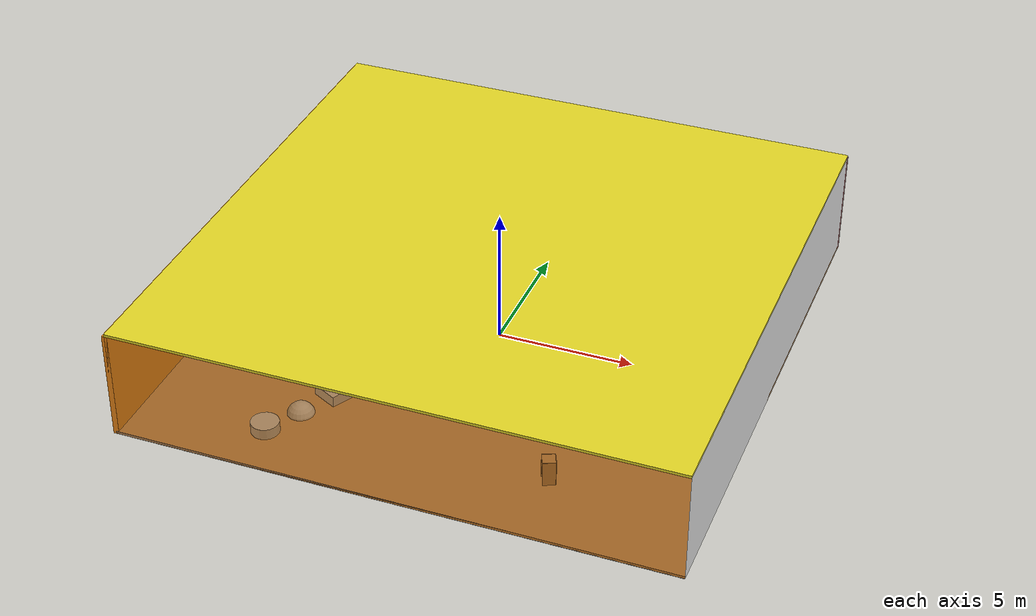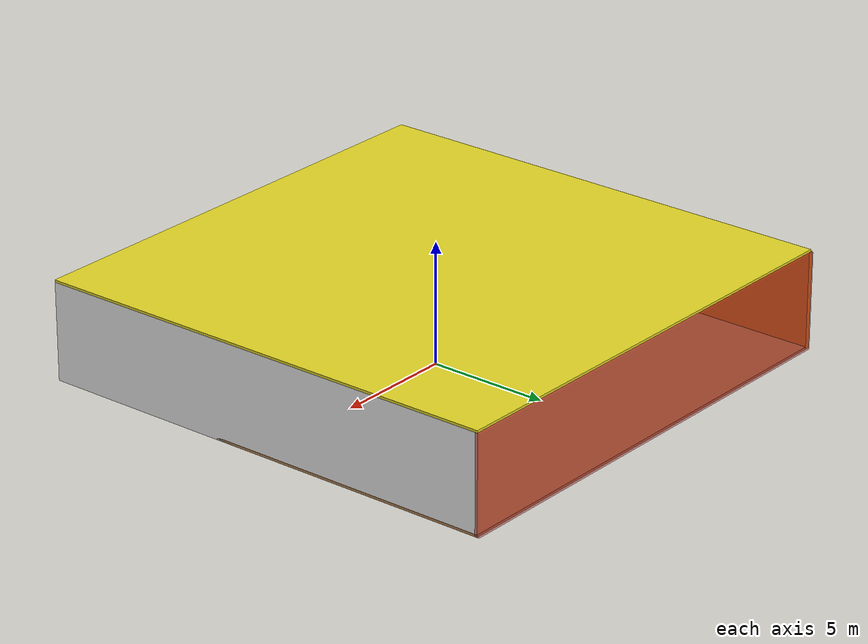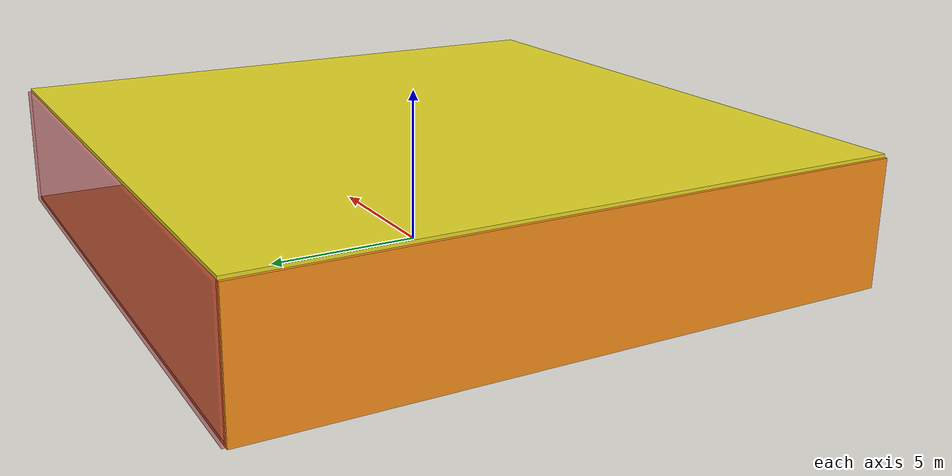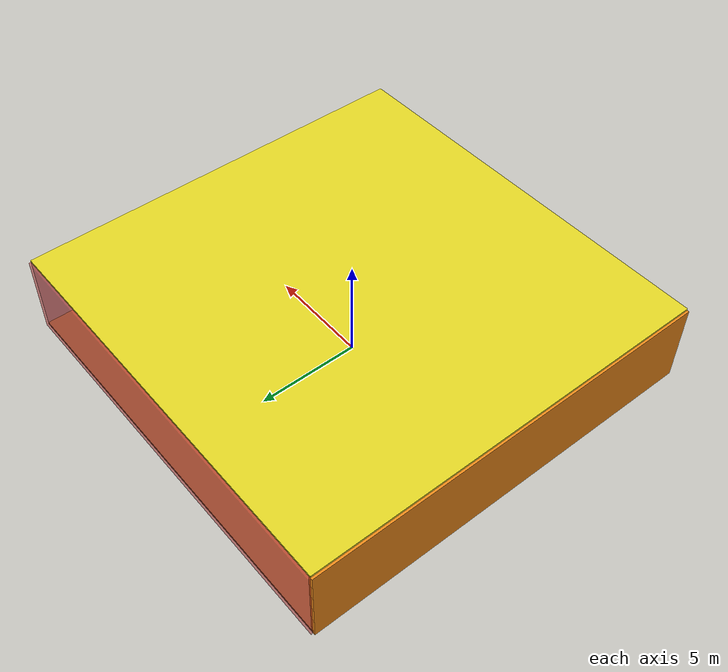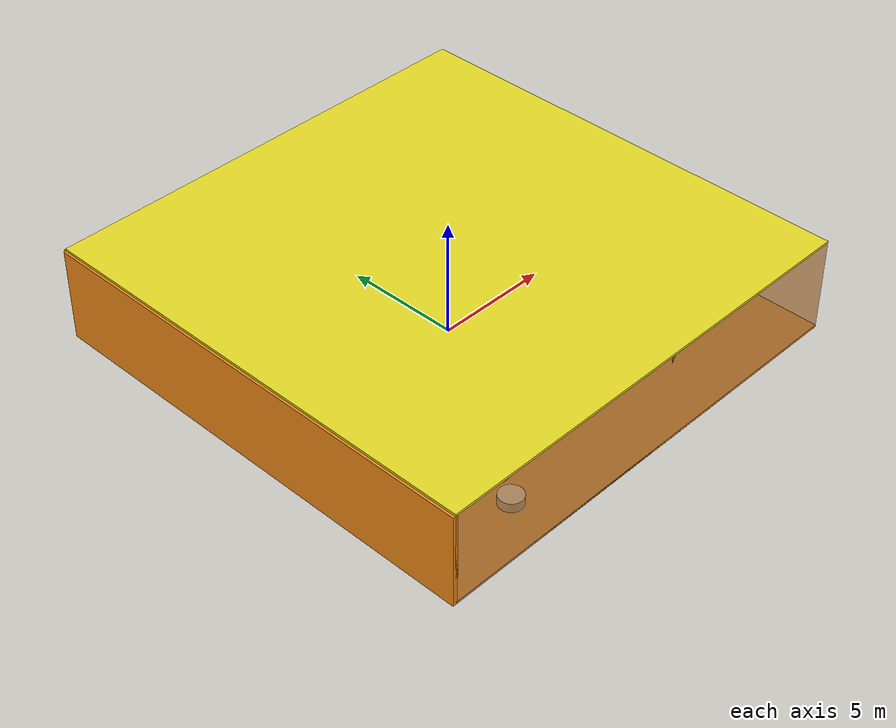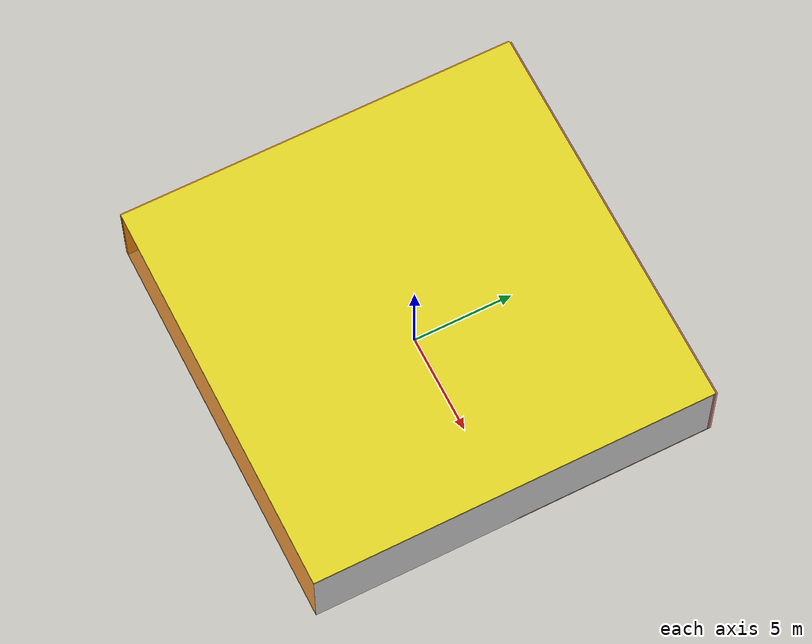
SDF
<sdf version="1.4">
 <world name="default">
  <physics type="ode">
   <max_step_size>0.001</max_step_size>
   <real_time_factor>1</real_time_factor>
   <real_time_update_rate>1000</real_time_update_rate>
   <gravity>0 0 -9.8</gravity>
  </physics>
  <scene><ambient>0.4 0.4 0.4 1</ambient><background>0.7 0.7 0.7 1</background><shadows>1</shadows></scene>
  <model name="Surrounding">
   <static>1</static>
   <link name="Ceiling">
    <collision name="Ceiling_Collision"><geometry><box><size>20 20 0.1</size></box></geometry></collision>
    <visual name="Ceiling_Visual">
     <geometry><box><size>20 20 0.1</size></box></geometry>
     <material>
      <script><uri>file://media/materials/scripts/gazebo.material</uri><name>Gazebo/Yellow</name></script>
     </material>
    </visual>
    <pose>0 0 4.05 0 0 0</pose>
   </link>
   <link name="Wall_South">
    <collision name="Wall_South_Collision">
     <geometry><box><size>20 0 4</size></box></geometry>
     <pose>0 0 2 0 -0 0</pose>
    </collision>
    <visual name="Wall_South_Visual">
     <pose>0 0 2 0 -0 0</pose>
     <geometry><box><size>20 0 4</size></box></geometry>
     <material>
      <script>
       <uri>file://media/materials/scripts/gazebo.material</uri>
       <name>Gazebo/OrangeTransparent</name>
      </script>
     </material>
    </visual>
    <velocity_decay><linear>0</linear><angular>0</angular></velocity_decay>
    <pose>0 -10 0 0 -0 0</pose>
   </link>
   <link name="Wall_East">
    <collision name="Wall_21_Collision">
     <geometry><box><size>20 0 4</size></box></geometry>
     <pose>0 0 2 0 -0 0</pose>
    </collision>
    <visual name="Wall_21_Visual">
     <pose>0 0 2 0 -0 0</pose>
     <geometry><box><size>20 0 4</size></box></geometry>
     <material>
      <script><uri>file://media/materials/scripts/gazebo.material</uri><name>Gazebo/White</name></script>
     </material>
    </visual>
    <velocity_decay><linear>0</linear><angular>0</angular></velocity_decay>
    <pose>10 0 0 0 -0 1.5708</pose>
   </link>
   <link name="Wall_North">
    <collision name="Wall_22_Collision">
     <geometry><box><size>20 0.2 4</size></box></geometry>
     <pose>0 0 2 0 -0 0</pose>
    </collision>
    <visual name="Wall_22_Visual">
     <pose>0 0 2 0 -0 0</pose>
     <geometry><box><size>20 0.2 4</size></box></geometry>
     <material>
      <script><uri>file://media/materials/scripts/gazebo.material</uri><name>Gazebo/RedTransparent</name></script>
     </material>
    </visual>
    <velocity_decay><linear>0</linear><angular>0</angular></velocity_decay>
    <pose>0 10 0 0 -0 0</pose>
   </link>
   <link name="Wall_West">
    <collision name="Wall_23_Collision">
     <geometry><box><size>20 0.2 4</size></box></geometry>
     <pose>0 0 2 0 -0 0</pose>
    </collision>
    <visual name="Wall_23_Visual">
     <pose>0 0 2 0 -0 0</pose>
     <geometry><box><size>20 0.2 4</size></box></geometry>
     <material>
      <script><uri>file://media/materials/scripts/gazebo.material</uri><name>Gazebo/Orange</name></script>
     </material>
    </visual>
    <velocity_decay><linear>0</linear><angular>0</angular></velocity_decay>
    <pose>-10 0 0 0 0 -1.5708</pose>
   </link>
   <link name="Ground_link">
    <collision name="collision">
     <pose>0 0 .05 0 -0 0</pose>
     <geometry><box><size>20 20 0.1</size></box></geometry>
    </collision>
    <visual name="visual">
     <pose>0 0 .05 0 -0 0</pose>
     <geometry><box><size>20 20 0.1</size></box></geometry>
     <material>
      <script><uri>file://media/materials/scripts/gazebo.material</uri><name>Gazebo/WoodFloor</name></script>
     </material>
    </visual>
   </link>
   <static>1</static>
  </model>
  <spherical_coordinates>
   <surface_model>EARTH_WGS84</surface_model>
   <latitude_deg>0</latitude_deg>
   <longitude_deg>0</longitude_deg>
   <elevation>0</elevation>
   <heading_deg>0</heading_deg>
  </spherical_coordinates>
  <light name="lightball_0" type="diffuse">
   <diffuse>0.8 0.8 0.8 1</diffuse>
   <specular>0.2 0.2 0.2 1</specular>
   <attenuation>
    <range>100</range>
    <constant>0.7</constant>
    <linear>0.01</linear>
    <quadratic>0.001</quadratic>
   </attenuation>
   <direction>-0.5 0.1 -0.9</direction>
   <pose>8.80337125046 -1.63979661859 0.510704617514 0 0 0</pose>
  </light>
  <light name="lightball_1" type="diffuse">
   <diffuse>0.8 0.8 0.8 1</diffuse>
   <specular>0.2 0.2 0.2 1</specular>
   <attenuation>
    <range>100</range>
    <constant>0.7</constant>
    <linear>0.01</linear>
    <quadratic>0.001</quadratic>
   </attenuation>
   <direction>-0.5 0.1 -0.9</direction>
   <pose>-8.85690940281 9.32324082877 3.49645793612 0 0 0</pose>
  </light>
  <light name="lightball_2" type="diffuse">
   <diffuse>0.8 0.8 0.8 1</diffuse>
   <specular>0.2 0.2 0.2 1</specular>
   <attenuation>
    <range>100</range>
    <constant>0.7</constant>
    <linear>0.01</linear>
    <quadratic>0.001</quadratic>
   </attenuation>
   <direction>-0.5 0.1 -0.9</direction>
   <pose>3.43504196947 -1.85783526131 1.94274033901 0 0 0</pose>
  </light>
  <light name="lightball_3" type="diffuse">
   <diffuse>0.8 0.8 0.8 1</diffuse>
   <specular>0.2 0.2 0.2 1</specular>
   <attenuation>
    <range>100</range>
    <constant>0.7</constant>
    <linear>0.01</linear>
    <quadratic>0.001</quadratic>
   </attenuation>
   <direction>-0.5 0.1 -0.9</direction>
   <pose>2.62924022788 6.34791057011 1.71333254703 0 0 0</pose>
  </light>
  <light name="lightball_4" type="diffuse">
   <diffuse>0.8 0.8 0.8 1</diffuse>
   <specular>0.2 0.2 0.2 1</specular>
   <attenuation>
    <range>100</range>
    <constant>0.7</constant>
    <linear>0.01</linear>
    <quadratic>0.001</quadratic>
   </attenuation>
   <direction>-0.5 0.1 -0.9</direction>
   <pose>-8.55294419331 -6.46021740304 0.770079580071 0 0 0</pose>
  </light>
  <light name="lightball_5" type="diffuse">
   <diffuse>0.8 0.8 0.8 1</diffuse>
   <specular>0.2 0.2 0.2 1</specular>
   <attenuation>
    <range>100</range>
    <constant>0.7</constant>
    <linear>0.01</linear>
    <quadratic>0.001</quadratic>
   </attenuation>
   <direction>-0.5 0.1 -0.9</direction>
   <pose>3.85951403628 5.09211213785 3.759692359 0 0 0</pose>
  </light>
  <light name="lightball_6" type="diffuse">
   <diffuse>0.8 0.8 0.8 1</diffuse>
   <specular>0.2 0.2 0.2 1</specular>
   <attenuation>
    <range>100</range>
    <constant>0.7</constant>
    <linear>0.01</linear>
    <quadratic>0.001</quadratic>
   </attenuation>
   <direction>-0.5 0.1 -0.9</direction>
   <pose>5.03295724205 -8.88979317294 0.893149935214 0 0 0</pose>
  </light>
  <light name="lightball_7" type="diffuse">
   <diffuse>0.8 0.8 0.8 1</diffuse>
   <specular>0.2 0.2 0.2 1</specular>
   <attenuation>
    <range>100</range>
    <constant>0.7</constant>
    <linear>0.01</linear>
    <quadratic>0.001</quadratic>
   </attenuation>
   <direction>-0.5 0.1 -0.9</direction>
   <pose>-6.33035154449 -0.392715811532 0.60975635716 0 0 0</pose>
  </light>
  <light name="lightball_8" type="diffuse">
   <diffuse>0.8 0.8 0.8 1</diffuse>
   <specular>0.2 0.2 0.2 1</specular>
   <attenuation>
    <range>100</range>
    <constant>0.7</constant>
    <linear>0.01</linear>
    <quadratic>0.001</quadratic>
   </attenuation>
   <direction>-0.5 0.1 -0.9</direction>
   <pose>-4.88752749906 -9.92681841346 1.26919964054 0 0 0</pose>
  </light>
  <include>
   <uri>model://textured_shapes</uri>
   <pose>-4.63318005436 -6.82111001229 0 0 0 2.66793577612</pose>
  </include>
  <include><uri>model://table</uri><pose>-3.8070843496 -5.10655610258 0 0 0 1.32558772277</pose></include>
  <include><uri>model://cabinet</uri><pose>-1.87152530689 1.38549264075 0 0 0 2.2164238569</pose></include>
  <include>
   <uri>model://robocup_3Dsim_goal</uri>
   <pose>1.15527634846 1.0803097975 0 0 0 1.36327573442</pose>
  </include>
  <include><uri>model://cabinet</uri><pose>4.47554419834 -7.17859130257 0 0 0 0.419663312297</pose></include>
 </world>
</sdf>

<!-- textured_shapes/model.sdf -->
<sdf version="1.6">
  <model name="textured_shapes">
    <pose>0 0 0.5 0 0 0</pose>
    <link name="box">
      <pose>0 -1.5 0 0 0 0</pose>
      <collision name="collision">
        <geometry>
          <box>
            <size>1 1 1</size>
          </box>
        </geometry>
      </collision>
      <visual name="visual">
        <geometry>
          <box>
            <size>1 1 1</size>
          </box>
        </geometry>
        <material>
          <script>
            <uri>model://../model_source/models/textured_shapes/materials/scripts</uri>
            <uri>model://../model_source/models/textured_shapes/materials/textures</uri>
            <name>TexturedShape/Squares</name>
          </script>
        </material>
      </visual>
    </link>
    <link name="sphere">
      <collision name="collision">
        <geometry>
          <sphere>
            <radius>0.5</radius>
          </sphere>
        </geometry>
      </collision>
      <visual name="visual">
        <geometry>
          <sphere>
            <radius>0.5</radius>
          </sphere>
        </geometry>
        <material>
          <script>
            <uri>model://../model_source/models/textured_shapes/materials/scripts</uri>
            <uri>model://../model_source/models/textured_shapes/materials/textures</uri>
            <name>TexturedShape/Squares</name>
          </script>
        </material>
      </visual>
    </link>
    <link name="cylinder">
      <pose>0 1.5 0 0 0 0</pose>
      <collision name="collision">
        <geometry>
          <cylinder>
            <radius>0.5</radius>
            <length>1</length>
          </cylinder>
        </geometry>
      </collision>
      <visual name="visual">
        <geometry>
          <cylinder>
            <radius>0.5</radius>
            <length>1</length>
          </cylinder>
        </geometry>
        <material>
          <script>
            <uri>model://../model_source/models/textured_shapes/materials/scripts</uri>
            <uri>model://../model_source/models/textured_shapes/materials/textures</uri>
            <name>TexturedShape/Squares</name>
          </script>
        </material>
      </visual>
    </link>
  </model>
</sdf>

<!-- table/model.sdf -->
<sdf version="1.5">
  <model name="table">
    <static>true</static>
    <link name="link">
      <collision name="surface">
        <pose>0 0 1.0 0 0 0</pose>
        <geometry>
          <box>
            <size>1.5 0.8 0.03</size>
          </box>
        </geometry>
        <surface>
          <friction>
            <ode>
              <mu>0.6</mu>
              <mu2>0.6</mu2>
            </ode>
          </friction>
        </surface>
      </collision>
      <visual name="visual1">
        <pose>0 0 1.0 0 0 0</pose>
        <geometry>
          <box>
            <size>1.5 0.8 0.03</size>
          </box>
        </geometry>
        <material>
          <script>
            <uri>model://media/materials/scripts/gazebo.material</uri>
            <name>Gazebo/Wood</name>
          </script>
        </material>
      </visual>
      <collision name="front_left_leg">
        <pose>0.68 0.38 0.5 0 0 0</pose>
        <geometry>
          <cylinder>
            <radius>0.02</radius>
            <length>1.0</length>
          </cylinder>
        </geometry>
      </collision>
      <visual name="front_left_leg">
        <pose>0.68 0.38 0.5 0 0 0</pose>
        <geometry>
          <cylinder>
            <radius>0.02</radius>
            <length>1.0</length>
          </cylinder>
        </geometry>
        <material>
          <script>
            <uri>model://media/materials/scripts/gazebo.material</uri>
            <name>Gazebo/Grey</name>
          </script>
        </material>
      </visual>
      <collision name="front_right_leg">
        <pose>0.68 -0.38 0.5 0 0 0</pose>
        <geometry>
          <cylinder>
            <radius>0.02</radius>
            <length>1.0</length>
          </cylinder>
        </geometry>
      </collision>
      <visual name="front_right_leg">
        <pose>0.68 -0.38 0.5 0 0 0</pose>
        <geometry>
          <cylinder>
            <radius>0.02</radius>
            <length>1.0</length>
          </cylinder>
        </geometry>
        <material>
          <script>
            <uri>model://media/materials/scripts/gazebo.material</uri>
            <name>Gazebo/Grey</name>
          </script>
        </material>
      </visual>
      <collision name="back_right_leg">
        <pose>-0.68 -0.38 0.5 0 0 0</pose>
        <geometry>
          <cylinder>
            <radius>0.02</radius>
            <length>1.0</length>
          </cylinder>
        </geometry>
      </collision>
      <visual name="back_right_leg">
        <pose>-0.68 -0.38 0.5 0 0 0</pose>
        <geometry>
          <cylinder>
            <radius>0.02</radius>
            <length>1.0</length>
          </cylinder>
        </geometry>
        <material>
          <script>
            <uri>model://media/materials/scripts/gazebo.material</uri>
            <name>Gazebo/Grey</name>
          </script>
        </material>
      </visual>
      <collision name="back_left_leg">
        <pose>-0.68 0.38 0.5 0 0 0</pose>
        <geometry>
          <cylinder>
            <radius>0.02</radius>
            <length>1.0</length>
          </cylinder>
        </geometry>
      </collision>
      <visual name="back_left_leg">
        <pose>-0.68 0.38 0.5 0 0 0</pose>
        <geometry>
          <cylinder>
            <radius>0.02</radius>
            <length>1.0</length>
          </cylinder>
        </geometry>
        <material>
          <script>
            <uri>model://media/materials/scripts/gazebo.material</uri>
            <name>Gazebo/Grey</name>
          </script>
        </material>
      </visual>
    </link>
  </model>
</sdf>

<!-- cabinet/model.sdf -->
<sdf version="1.5">
  <model name="cabinet">
    <static>true</static>
    <link name="cabinet_bottom_plate">
      <inertial>
        <pose>0 0 -1 0 0 0</pose>
        <inertia>
          <ixx>2.050000</ixx>
          <ixy>0</ixy>
          <ixz>0</ixz>
          <iyy>2.050000</iyy>
          <iyz>0</iyz>
          <izz>2.050000</izz>
        </inertia>
        <mass>25.000000</mass>
      </inertial>
      <collision name="cabinet_bottom_plate_geom">
        <pose>0 0 0.010000 0 0 0</pose>
        <geometry>
          <box>
            <size>0.450000 0.450000 0.020000</size>
          </box>
        </geometry>
      </collision>
      <visual name="cabinet_bottom_plate_geom_visual">
        <pose>0 0 0.010000 0 0 0</pose>
        <geometry>
          <box>
            <size>0.450000 0.450000 0.020000</size>
          </box>
        </geometry>
        <material>
          <script>
            <uri>model://media/materials/scripts/gazebo.material</uri>
            <name>Gazebo/Wood</name>
          </script>
        </material>
      </visual>
      <collision name="cabinet_bottom_plate_geom_cabinet_back_plate">
        <pose>0.235000 0 0.510000 0 0 0</pose>
        <geometry>
          <box>
            <size>0.020000 0.450000 1.020000</size>
          </box>
        </geometry>
      </collision>
      <visual name="cabinet_bottom_plate_geom_cabinet_back_plate_visual">
        <pose>0.235000 0 0.510000 0 0 0</pose>
        <geometry>
          <box>
            <size>0.020000 0.450000 1.020000</size>
          </box>
        </geometry>
        <material>
          <script>
            <uri>model://media/materials/scripts/gazebo.material</uri>
            <name>Gazebo/Wood</name>
          </script>
        </material>
      </visual>
      <collision name="cabinet_bottom_plate_geom_cabinet_left_plate">
        <pose>0 0.235000 0.510000 0 0 0</pose>
        <geometry>
          <box>
            <size>0.450000 0.020000 1.020000</size>
          </box>
        </geometry>
      </collision>
      <visual name="cabinet_bottom_plate_geom_cabinet_left_plate_visual">
        <pose>0 0.235000 0.510000 0 0 0</pose>
        <geometry>
          <box>
            <size>0.450000 0.020000 1.020000</size>
          </box>
        </geometry>
        <material>
          <script>
            <uri>model://media/materials/scripts/gazebo.material</uri>
            <name>Gazebo/Wood</name>
          </script>
        </material>
      </visual>
      <collision name="cabinet_bottom_plate_geom_cabinet_middle_plate">
        <pose>0 0 0.510000 0 0 0</pose>
        <geometry>
          <box>
            <size>0.450000 0.450000 0.020000</size>
          </box>
        </geometry>
      </collision>
      <visual name="cabinet_bottom_plate_geom_cabinet_middle_plate_visual">
        <pose>0 0 0.510000 0 0 0</pose>
        <geometry>
          <box>
            <size>0.450000 0.450000 0.020000</size>
          </box>
        </geometry>
        <material>
          <script>
            <uri>model://media/materials/scripts/gazebo.material</uri>
            <name>Gazebo/Wood</name>
          </script>
        </material>
      </visual>
      <collision name="cabinet_bottom_plate_geom_cabinet_right_plate">
        <pose>0 -0.235000 0.510000 0 0 0</pose>
        <geometry>
          <box>
            <size>0.450000 0.020000 1.020000</size>
          </box>
        </geometry>
      </collision>
      <visual name="cabinet_bottom_plate_geom_cabinet_right_plate_visual">
        <pose>0 -0.235000 0.510000 0 0 0</pose>
        <geometry>
          <box>
            <size>0.450000 0.020000 1.020000</size>
          </box>
        </geometry>
        <material>
          <script>
            <uri>model://media/materials/scripts/gazebo.material</uri>
            <name>Gazebo/Wood</name>
          </script>
        </material>
      </visual>
      <collision name="cabinet_bottom_plate_geom_cabinet_top_plate">
        <pose>0 0 1.010000 0 0 0</pose>
        <geometry>
          <box>
            <size>0.450000 0.450000 0.020000</size>
          </box>
        </geometry>
      </collision>
      <visual name="cabinet_bottom_plate_geom_cabinet_top_plate_visual">
        <pose>0 0 1.010000 0 0 0</pose>
        <geometry>
          <box>
            <size>0.450000 0.450000 0.020000</size>
          </box>
        </geometry>
        <material>
          <script>
            <uri>model://media/materials/scripts/gazebo.material</uri>
            <name>Gazebo/Wood</name>
          </script>
        </material>
      </visual>
    </link>
  </model>
</sdf>

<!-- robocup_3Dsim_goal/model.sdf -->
<sdf version="1.5">
  <model name="robocup_3d_goal">
    <static>true</static>
    <link name="left_post">
      <pose>0 1.05 0.45 0 0 0</pose>
      <collision name="collision">
        <geometry>
          <cylinder>
            <radius>0.05</radius>
            <length>0.9</length>
          </cylinder>
        </geometry>
      </collision>
      <visual name="visual">
        <geometry>
          <cylinder>
            <radius>0.05</radius>
            <length>0.9</length>
          </cylinder>
        </geometry>
        <material>
          <script>
            <uri>file://media/materials/scripts/gazebo.material</uri>
            <name>Gazebo/ZincYellow</name>
          </script>
        </material>
      </visual>
    </link>
    <link name="left_support_horiz_lower">
      <pose>0.30 1.05 0.01 0 0 0</pose>
      <collision name="collision">
        <geometry>
          <box>
            <size>0.50 0.02 0.02</size>
          </box>
        </geometry>
      </collision>
      <visual name="visual">
        <geometry>
          <box>
            <size>0.50 0.02 0.02</size>
          </box>
        </geometry>
        <material>
          <script>
            <uri>file://media/materials/scripts/gazebo.material</uri>
            <name>Gazebo/White</name>
          </script>
        </material>
      </visual>
    </link>
    <link name="left_support_horiz_upper">
      <pose>0.30 1.05 0.79 0 0 0</pose>
      <collision name="collision">
        <geometry>
          <box>
            <size>0.50 0.02 0.02</size>
          </box>
        </geometry>
      </collision>
      <visual name="visual">
        <geometry>
          <box>
            <size>0.50 0.02 0.02</size>
          </box>
        </geometry>
        <material>
          <script>
            <uri>file://media/materials/scripts/gazebo.material</uri>
            <name>Gazebo/White</name>
          </script>
        </material>
      </visual>
    </link>
    <link name="left_support_vertical">
      <pose>0.56 1.05 0.4 0 1.5708 0</pose>
      <collision name="collision">
        <geometry>
          <box>
            <size>0.80 0.02 0.02</size>
          </box>
        </geometry>
      </collision>
      <visual name="visual">
        <geometry>
          <box>
            <size>0.80 0.02 0.02</size>
          </box>
        </geometry>
        <material>
          <script>
            <uri>file://media/materials/scripts/gazebo.material</uri>
            <name>Gazebo/White</name>
          </script>
        </material>
      </visual>
    </link>
    <link name="right_support_horiz_lower">
      <pose>0.30 -1.05 0.01 0 0 0</pose>
      <collision name="collision">
        <geometry>
          <box>
            <size>0.50 0.02 0.02</size>
          </box>
        </geometry>
      </collision>
      <visual name="visual">
        <geometry>
          <box>
            <size>0.50 0.02 0.02</size>
          </box>
        </geometry>
        <material>
          <script>
            <uri>file://media/materials/scripts/gazebo.material</uri>
            <name>Gazebo/White</name>
          </script>
        </material>
      </visual>
    </link>
    <link name="right_support_horiz_upper">
      <pose>0.30 -1.05 0.79 0 0 0</pose>
      <collision name="collision">
        <geometry>
          <box>
            <size>0.50 0.02 0.02</size>
          </box>
        </geometry>
      </collision>
      <visual name="visual">
        <geometry>
          <box>
            <size>0.50 0.02 0.02</size>
          </box>
        </geometry>
        <material>
          <script>
            <uri>file://media/materials/scripts/gazebo.material</uri>
            <name>Gazebo/White</name>
          </script>
        </material>
      </visual>
    </link>
    <link name="right_support_vertical">
      <pose>0.56 -1.05 0.4 0 1.5708 0</pose>
      <collision name="collision">
        <geometry>
          <box>
            <size>0.80 0.02 0.02</size>
          </box>
        </geometry>
      </collision>
      <visual name="visual">
        <geometry>
          <box>
            <size>0.80 0.02 0.02</size>
          </box>
        </geometry>
        <material>
          <script>
            <uri>file://media/materials/scripts/gazebo.material</uri>
            <name>Gazebo/White</name>
          </script>
        </material>
      </visual>
    </link>
    <link name="center_support_horiz_lower">
      <pose>0.56 0 0.01 0 1.5708 0</pose>
      <collision name="collision">
        <geometry>
          <box>
            <size>0.02 2.08 0.02</size>
          </box>
        </geometry>
      </collision>
      <visual name="visual">
        <geometry>
          <box>
            <size>0.02 2.08 0.02</size>
          </box>
        </geometry>
        <material>
          <script>
            <uri>file://media/materials/scripts/gazebo.material</uri>
            <name>Gazebo/White</name>
          </script>
        </material>
      </visual>
    </link>
    <link name="center_support_horiz_upper">
      <pose>0.56 0 0.79 0 1.5708 0</pose>
      <collision name="collision">
        <geometry>
          <box>
            <size>0.02 2.08 0.02</size>
          </box>
        </geometry>
      </collision>
      <visual name="visual">
        <geometry>
          <box>
            <size>0.02 2.08 0.02</size>
          </box>
        </geometry>
        <material>
          <script>
            <uri>file://media/materials/scripts/gazebo.material</uri>
            <name>Gazebo/White</name>
          </script>
        </material>
      </visual>
    </link>
    <link name="right_post">
      <pose>0 -1.05 0.45 0 0 0</pose>
      <collision name="collision">
        <geometry>
          <cylinder>
            <radius>0.05</radius>
            <length>0.9</length>
          </cylinder>
        </geometry>
      </collision>
      <visual name="visual">
        <geometry>
          <cylinder>
            <radius>0.05</radius>
            <length>0.9</length>
          </cylinder>
        </geometry>
        <material>
          <script>
            <uri>file://media/materials/scripts/gazebo.material</uri>
            <name>Gazebo/ZincYellow</name>
          </script>
        </material>
      </visual>
    </link>
    <link name="crossbar">
      <pose>0 0 0.85 1.57 1.57 0</pose>
      <collision name="collision">
        <geometry>
          <cylinder>
            <radius>0.05</radius>
            <length>2.0</length>
          </cylinder>
        </geometry>
      </collision>
      <visual name="visual">
        <geometry>
          <cylinder>
            <radius>0.05</radius>
            <length>2.0</length>
          </cylinder>
        </geometry>
        <material>
          <script>
            <uri>file://media/materials/scripts/gazebo.material</uri>
            <name>Gazebo/ZincYellow</name>
          </script>
        </material>
      </visual>
    </link>
    <link name="center_net">
      <pose>0.56 0 0.40 0 0 0</pose>
      <collision name="collision">
        <geometry>
          <box>
            <size>0.01 2.1 0.80</size>
          </box>
        </geometry>
      </collision>
      <visual name="visual">
        <geometry>
          <box>
            <size>0.01 2.1 0.80</size>
          </box>
        </geometry>
        <material>
          <script>
            <uri>model://../model_source/models/robocup09_spl_field/materials/scripts/</uri>
            <uri>model://../model_source/models/robocup09_spl_field/materials/textures/</uri>
            <name>RoboCup/Net</name>
          </script>
        </material>
      </visual>
    </link>
    <link name="left_net">
      <pose>0.30 1.05 0.40 0 0 0</pose>
      <collision name="collision">
        <geometry>
          <box>
            <size>0.50 0.01 0.76</size>
          </box>
        </geometry>
      </collision>
      <visual name="visual">
        <geometry>
          <box>
            <size>0.50 0.01 0.76</size>
          </box>
        </geometry>
        <material>
          <script>
            <uri>model://../model_source/models/robocup09_spl_field/materials/scripts/</uri>
            <uri>model://../model_source/models/robocup09_spl_field/materials/textures/</uri>
            <name>RoboCup/Net</name>
          </script>
        </material>
      </visual>
    </link>
    <link name="right_net">
      <pose>0.30 -1.05 0.40 0 0 0</pose>
      <collision name="collision">
        <geometry>
          <box>
            <size>0.50 0.01 0.76</size>
          </box>
        </geometry>
      </collision>
      <visual name="visual">
        <geometry>
          <box>
            <size>0.50 0.01 0.76</size>
          </box>
        </geometry>
        <material>
          <script>
            <uri>model://../model_source/models/robocup09_spl_field/materials/scripts/</uri>
            <uri>model://../model_source/models/robocup09_spl_field/materials/textures/</uri>
            <name>RoboCup/Net</name>
          </script>
        </material>
      </visual>
    </link>
  </model>
</sdf>
